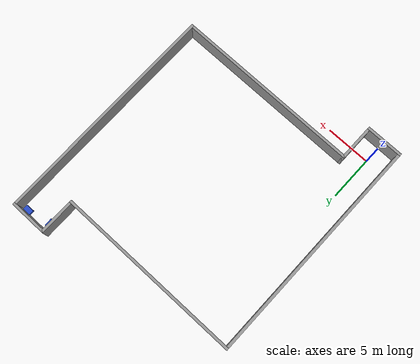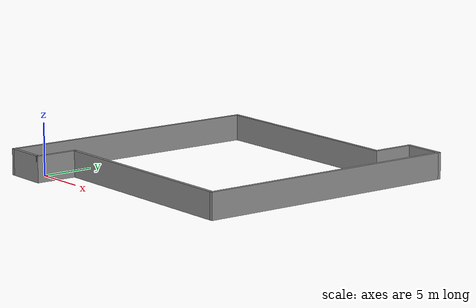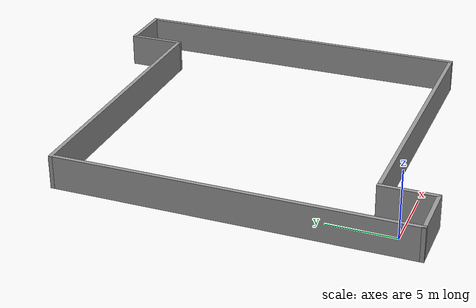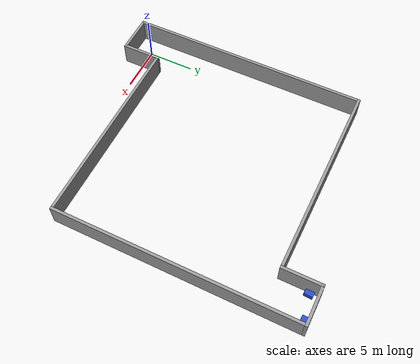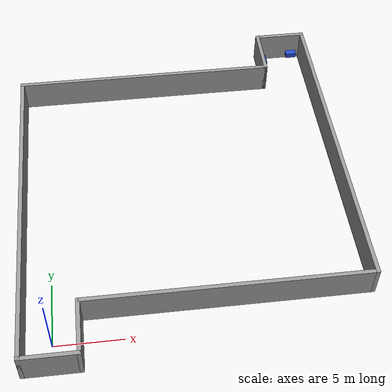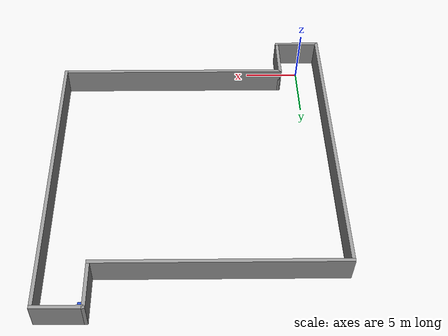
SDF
<sdf version="1.6">
 <world name="default">
  <light name="sun" type="directional">
   <pose>0 0 10 0 -0 0</pose>
   <diffuse>0.8 0.8 0.8 1</diffuse>
   <specular>0.2 0.2 0.2 1</specular>
   <attenuation>
    <range>1000</range>
    <constant>0.9</constant>
    <linear>0.01</linear>
    <quadratic>0.001</quadratic>
   </attenuation>
   <direction>-0.5 0.1 -0.9</direction>
  </light>
  <gravity>0 0 -9.8</gravity>
  <magnetic_field>6e-06 2.3e-05 -4.2e-05</magnetic_field>
  <atmosphere type="adiabatic"/>
  <physics name="default_physics" default="0" type="ode">
   <max_step_size>0.001</max_step_size>
   <real_time_factor>1</real_time_factor>
   <real_time_update_rate>1000</real_time_update_rate>
  </physics>
  <scene><ambient>0.4 0.4 0.4 1</ambient><background>0.7 0.7 0.7 1</background><shadows>1</shadows></scene>
  <spherical_coordinates>
   <surface_model>EARTH_WGS84</surface_model>
   <latitude_deg>0</latitude_deg>
   <longitude_deg>0</longitude_deg>
   <elevation>0</elevation>
   <heading_deg>0</heading_deg>
  </spherical_coordinates>
  <model name="DelZona">
   <pose>10.5 13 0 0 -0 0</pose>
   <link name="Wall_10">
    <collision name="Wall_10_Collision">
     <geometry><box><size>4.3 0.3 2.5</size></box></geometry>
     <pose>0 0 1.25 0 -0 0</pose>
    </collision>
    <visual name="Wall_10_Visual">
     <pose>0 0 1.25 0 -0 0</pose>
     <geometry><box><size>4.3 0.3 2.5</size></box></geometry>
     <material>
      <script><uri>file://media/materials/scripts/gazebo.material</uri><name>Gazebo/Grey</name></script>
      <ambient>1 1 1 1</ambient>
     </material>
     <meta><layer>0</layer></meta>
    </visual>
    <pose>-8.5 -13 0 0 -0 1.5708</pose>
   </link>
   <link name="Wall_12">
    <collision name="Wall_12_Collision">
     <geometry><box><size>21 0.3 2.5</size></box></geometry>
     <pose>0 0 1.25 0 -0 0</pose>
    </collision>
    <visual name="Wall_12_Visual">
     <pose>0 0 1.25 0 -0 0</pose>
     <geometry><box><size>21 0.3 2.5</size></box></geometry>
     <material>
      <script><uri>file://media/materials/scripts/gazebo.material</uri><name>Gazebo/Grey</name></script>
      <ambient>1 1 1 1</ambient>
     </material>
     <meta><layer>0</layer></meta>
    </visual>
    <pose>1.85 -11 0 0 -0 0</pose>
   </link>
   <link name="Wall_16">
    <collision name="Wall_16_Collision">
     <geometry><box><size>26 0.3 2.5</size></box></geometry>
     <pose>0 0 1.25 0 -0 0</pose>
    </collision>
    <visual name="Wall_16_Visual">
     <pose>0 0 1.25 0 -0 0</pose>
     <geometry><box><size>26 0.3 2.5</size></box></geometry>
     <material>
      <script><uri>file://media/materials/scripts/gazebo.material</uri><name>Gazebo/Grey</name></script>
      <ambient>1 1 1 1</ambient>
     </material>
     <meta><layer>0</layer></meta>
    </visual>
    <pose>12.5 1.85 0 0 -0 1.5708</pose>
   </link>
   <link name="Wall_18">
    <collision name="Wall_18_Collision">
     <geometry><box><size>4.3 0.3 2.5</size></box></geometry>
     <pose>0 0 1.25 0 -0 0</pose>
    </collision>
    <visual name="Wall_18_Visual">
     <pose>0 0 1.25 0 -0 0</pose>
     <geometry><box><size>4.3 0.3 2.5</size></box></geometry>
     <material>
      <script><uri>file://media/materials/scripts/gazebo.material</uri><name>Gazebo/Grey</name></script>
      <ambient>1 1 1 1</ambient>
     </material>
     <meta><layer>0</layer></meta>
    </visual>
    <pose>8.5 13 0 0 -0 1.5708</pose>
   </link>
   <link name="Wall_20">
    <collision name="Wall_20_Collision">
     <geometry><box><size>4.3 0.3 2.5</size></box></geometry>
     <pose>0 0 1.25 0 -0 0</pose>
    </collision>
    <visual name="Wall_20_Visual">
     <pose>0 0 1.25 0 -0 0</pose>
     <geometry><box><size>4.3 0.3 2.5</size></box></geometry>
     <material>
      <script><uri>file://media/materials/scripts/gazebo.material</uri><name>Gazebo/Grey</name></script>
      <ambient>1 1 1 1</ambient>
     </material>
     <meta><layer>0</layer></meta>
    </visual>
    <pose>10.5 15 0 0 -0 0</pose>
   </link>
   <link name="Wall_22">
    <collision name="Wall_22_Collision">
     <geometry><box><size>21.3 0.3 2.5</size></box></geometry>
     <pose>0 0 1.25 0 -0 0</pose>
    </collision>
    <visual name="Wall_22_Visual">
     <pose>0 0 1.25 0 -0 0</pose>
     <geometry><box><size>21.3 0.3 2.5</size></box></geometry>
     <material>
      <script><uri>file://media/materials/scripts/gazebo.material</uri><name>Gazebo/Grey</name></script>
      <ambient>1 1 1 1</ambient>
     </material>
     <meta><layer>0</layer></meta>
    </visual>
    <pose>-2 11 0 0 -0 0</pose>
   </link>
   <link name="Wall_4">
    <collision name="Wall_4_Collision">
     <geometry><box><size>26 0.3 2.5</size></box></geometry>
     <pose>0 0 1.25 0 -0 0</pose>
    </collision>
    <visual name="Wall_4_Visual">
     <pose>0 0 1.25 0 -0 0</pose>
     <geometry><box><size>26 0.3 2.5</size></box></geometry>
     <material>
      <script><uri>file://media/materials/scripts/gazebo.material</uri><name>Gazebo/Grey</name></script>
      <ambient>1 1 1 1</ambient>
     </material>
     <meta><layer>0</layer></meta>
    </visual>
    <pose>-12.5 -2.15 0 0 -0 1.5708</pose>
   </link>
   <link name="Wall_8">
    <collision name="Wall_8_Collision">
     <geometry><box><size>4.3 0.3 2.5</size></box></geometry>
     <pose>0 0 1.25 0 -0 0</pose>
    </collision>
    <visual name="Wall_8_Visual">
     <pose>0 0 1.25 0 -0 0</pose>
     <geometry><box><size>4.3 0.3 2.5</size></box></geometry>
     <material>
      <script><uri>file://media/materials/scripts/gazebo.material</uri><name>Gazebo/Grey</name></script>
      <ambient>1 1 1 1</ambient>
     </material>
     <meta><layer>0</layer></meta>
    </visual>
    <pose>-10.5 -15 0 0 -0 0</pose>
   </link>
   <static>1</static>
  </model>
  <model name="unit_box_clone">
   <pose>22.1164 27.5535 0.607412 -0.806741 1.51369 -0.804489</pose>
   <link name="link">
    <inertial>
     <mass>1</mass>
     <inertia>
      <ixx>0.166667</ixx>
      <ixy>0</ixy>
      <ixz>0</ixz>
      <iyy>0.166667</iyy>
      <iyz>0</iyz>
      <izz>0.166667</izz>
     </inertia>
    </inertial>
    <collision name="collision">
     <geometry><box><size>0.399999 0.566888 0.897257</size></box></geometry>
    </collision>
    <visual name="visual">
     <geometry><box><size>0.399999 0.566888 0.897257</size></box></geometry>
     <material>
      <script><name>Gazebo/Blue</name><uri>file://media/materials/scripts/gazebo.material</uri></script>
     </material>
    </visual>
   </link>
  </model>
  <model name="unit_box_clone_clone">
   <pose>19.4977 27.0695 0.513805 2.35185 -1.43623 2.35648</pose>
   <link name="link">
    <inertial>
     <mass>1</mass>
     <inertia>
      <ixx>0.166667</ixx>
      <ixy>0</ixy>
      <ixz>0</ixz>
      <iyy>0.166667</iyy>
      <iyz>0</iyz>
      <izz>0.166667</izz>
     </inertia>
    </inertial>
    <collision name="collision"><geometry><box><size>0.4 0.54443 0.896287</size></box></geometry></collision>
    <visual name="visual">
     <geometry><box><size>0.4 0.54443 0.896287</size></box></geometry>
     <material>
      <script><name>Gazebo/Blue</name><uri>file://media/materials/scripts/gazebo.material</uri></script>
     </material>
    </visual>
   </link>
  </model>
 </world>
</sdf>
